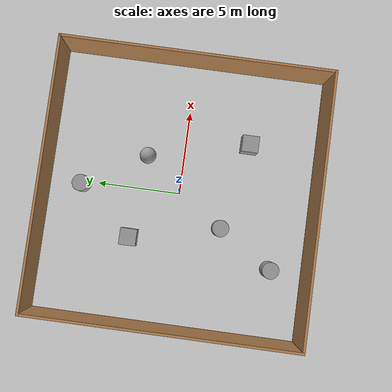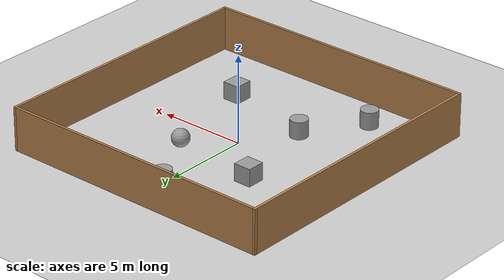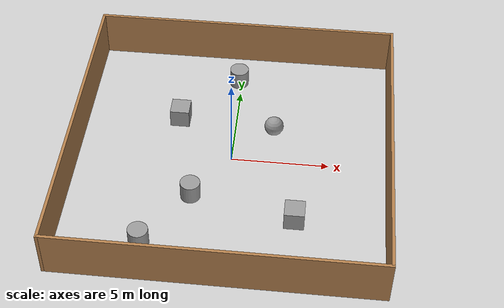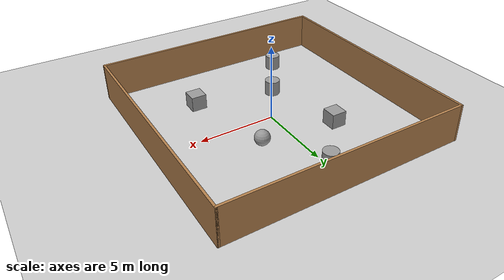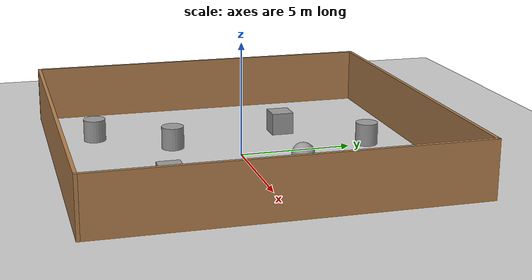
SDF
<sdf version="1.4">
 <world name="default">
  <light name="sun" type="directional">
   <pose>0 0 10 0 -0 0</pose>
   <diffuse>0.8 0.8 0.8 1</diffuse>
   <specular>0.2 0.2 0.2 1</specular>
   <attenuation>
    <range>1000</range>
    <constant>0.9</constant>
    <linear>0.01</linear>
    <quadratic>0.001</quadratic>
   </attenuation>
   <direction>-0.5 0.1 -0.9</direction>
  </light>
  <model name="ground_plane">
   <static>1</static>
   <link name="link">
    <collision name="collision">
     <geometry><plane><normal>0 0 1</normal><size>100 100</size></plane></geometry>
     <surface><friction><ode><mu>100</mu><mu2>50</mu2></ode></friction></surface>
    </collision>
    <visual name="visual">
     <cast_shadows>0</cast_shadows>
     <geometry><plane><normal>0 0 1</normal><size>100 100</size></plane></geometry>
     <material>
      <script><uri>file://media/materials/scripts/gazebo.material</uri><name>Gazebo/Grey</name></script>
     </material>
    </visual>
   </link>
  </model>
  <gravity>0 0 -9.8</gravity>
  <magnetic_field>6e-06 2.3e-05 -4.2e-05</magnetic_field>
  <atmosphere type="adiabatic"/>
  <physics name="default_physics" default="0" type="ode">
   <max_step_size>0.001</max_step_size>
   <real_time_factor>1</real_time_factor>
   <real_time_update_rate>1000</real_time_update_rate>
  </physics>
  <scene><ambient>0.4 0.4 0.4 1</ambient><background>0.7 0.7 0.7 1</background><shadows>1</shadows></scene>
  <spherical_coordinates>
   <surface_model>EARTH_WGS84</surface_model>
   <latitude_deg>0</latitude_deg>
   <longitude_deg>0</longitude_deg>
   <elevation>0</elevation>
   <heading_deg>0</heading_deg>
  </spherical_coordinates>
  <model name="square">
   <link name="Wall_0">
    <collision name="Wall_0_Collision">
     <geometry><box><size>16.1502 0.15 2.5</size></box></geometry>
     <pose>0 0 1.25 0 -0 0</pose>
    </collision>
    <visual name="Wall_0_Visual">
     <pose>0 0 1.25 0 -0 0</pose>
     <geometry><box><size>16.1502 0.15 2.5</size></box></geometry>
     <material>
      <script><uri>file://media/materials/scripts/gazebo.material</uri><name>Gazebo/Wood</name></script>
      <ambient>1 1 1 1</ambient>
     </material>
    </visual>
    <pose>-8 0 0 0 0 -1.5708</pose>
   </link>
   <link name="Wall_5">
    <collision name="Wall_5_Collision">
     <geometry><box><size>16.15 0.15 2.5</size></box></geometry>
     <pose>0 0 1.25 0 -0 0</pose>
    </collision>
    <visual name="Wall_5_Visual">
     <pose>0 0 1.25 0 -0 0</pose>
     <geometry><box><size>16.15 0.15 2.5</size></box></geometry>
     <material>
      <script><uri>file://media/materials/scripts/gazebo.material</uri><name>Gazebo/Wood</name></script>
      <ambient>1 1 1 1</ambient>
     </material>
    </visual>
    <pose>0 8 0 0 -0 0</pose>
   </link>
   <link name="Wall_6">
    <collision name="Wall_6_Collision">
     <geometry><box><size>16.15 0.15 2.5</size></box></geometry>
     <pose>0 0 1.25 0 -0 0</pose>
    </collision>
    <visual name="Wall_6_Visual">
     <pose>0 0 1.25 0 -0 0</pose>
     <geometry><box><size>16.15 0.15 2.5</size></box></geometry>
     <material>
      <script><uri>file://media/materials/scripts/gazebo.material</uri><name>Gazebo/Wood</name></script>
      <ambient>1 1 1 1</ambient>
     </material>
    </visual>
    <pose>8 0 0 0 0 -1.5708</pose>
   </link>
   <link name="Wall_7">
    <collision name="Wall_7_Collision">
     <geometry><box><size>16.15 0.15 2.5</size></box></geometry>
     <pose>0 0 1.25 0 -0 0</pose>
    </collision>
    <visual name="Wall_7_Visual">
     <pose>0 0 1.25 0 -0 0</pose>
     <geometry><box><size>16.15 0.15 2.5</size></box></geometry>
     <material>
      <script><uri>file://media/materials/scripts/gazebo.material</uri><name>Gazebo/Wood</name></script>
      <ambient>1 1 1 1</ambient>
     </material>
    </visual>
    <pose>0 -8 0 0 -0 3.14159</pose>
   </link>
   <static>1</static>
  </model>
  <model name="unit_box">
   <pose>-2.99004 2.66995 0.499995 0 1e-05 0</pose>
   <link name="link">
    <inertial>
     <mass>1</mass>
     <inertia>
      <ixx>0.166667</ixx>
      <ixy>0</ixy>
      <ixz>0</ixz>
      <iyy>0.166667</iyy>
      <iyz>0</iyz>
      <izz>0.166667</izz>
     </inertia>
    </inertial>
    <collision name="collision"><geometry><box><size>1 1 1</size></box></geometry></collision>
    <visual name="visual">
     <geometry><box><size>1 1 1</size></box></geometry>
     <material>
      <script><name>Gazebo/Grey</name><uri>file://media/materials/scripts/gazebo.material</uri></script>
     </material>
    </visual>
   </link>
  </model>
  <model name="unit_cylinder">
   <pose>-1.77385 -2.69832 0.499993 -3e-06 -3e-06 0</pose>
   <link name="link">
    <inertial>
     <mass>1</mass>
     <inertia><ixx>0.145833</ixx><ixy>0</ixy><ixz>0</ixz><iyy>0.145833</iyy><iyz>0</iyz><izz>0.125</izz></inertia>
    </inertial>
    <collision name="collision">
     <geometry><cylinder><radius>0.5</radius><length>1</length></cylinder></geometry>
    </collision>
    <visual name="visual">
     <geometry><cylinder><radius>0.5</radius><length>1</length></cylinder></geometry>
     <material>
      <script><name>Gazebo/Grey</name><uri>file://media/materials/scripts/gazebo.material</uri></script>
     </material>
    </visual>
   </link>
  </model>
  <model name="unit_sphere">
   <pose>2.02452 2.18809 0.5 0 -0 0</pose>
   <link name="link">
    <inertial>
     <mass>1</mass>
     <inertia><ixx>0.1</ixx><ixy>0</ixy><ixz>0</ixz><iyy>0.1</iyy><iyz>0</iyz><izz>0.1</izz></inertia>
    </inertial>
    <collision name="collision"><geometry><sphere><radius>0.5</radius></sphere></geometry></collision>
    <visual name="visual">
     <geometry><sphere><radius>0.5</radius></sphere></geometry>
     <material>
      <script><name>Gazebo/Grey</name><uri>file://media/materials/scripts/gazebo.material</uri></script>
     </material>
    </visual>
   </link>
  </model>
  <model name="unit_box_0">
   <pose>3.46997 -3.82828 0.499995 -1e-05 -0 -0</pose>
   <link name="link">
    <inertial>
     <mass>1</mass>
     <inertia>
      <ixx>0.166667</ixx>
      <ixy>0</ixy>
      <ixz>0</ixz>
      <iyy>0.166667</iyy>
      <iyz>0</iyz>
      <izz>0.166667</izz>
     </inertia>
    </inertial>
    <collision name="collision"><geometry><box><size>1 1 1</size></box></geometry></collision>
    <visual name="visual">
     <geometry><box><size>1 1 1</size></box></geometry>
     <material>
      <script><name>Gazebo/Grey</name><uri>file://media/materials/scripts/gazebo.material</uri></script>
     </material>
    </visual>
   </link>
  </model>
  <model name="unit_cylinder_0">
   <pose>-0.18085 5.91612 0.499993 -3e-06 -4e-06 -0</pose>
   <link name="link">
    <inertial>
     <mass>1</mass>
     <inertia><ixx>0.145833</ixx><ixy>0</ixy><ixz>0</ixz><iyy>0.145833</iyy><iyz>0</iyz><izz>0.125</izz></inertia>
    </inertial>
    <collision name="collision">
     <geometry><cylinder><radius>0.5</radius><length>1</length></cylinder></geometry>
    </collision>
    <visual name="visual">
     <geometry><cylinder><radius>0.5</radius><length>1</length></cylinder></geometry>
     <material>
      <script><name>Gazebo/Grey</name><uri>file://media/materials/scripts/gazebo.material</uri></script>
     </material>
    </visual>
   </link>
  </model>
  <model name="unit_cylinder_1">
   <pose>-3.83756 -5.92608 0.499997 3e-06 4e-06 -0</pose>
   <link name="link">
    <inertial>
     <mass>1</mass>
     <inertia><ixx>0.145833</ixx><ixy>0</ixy><ixz>0</ixz><iyy>0.145833</iyy><iyz>0</iyz><izz>0.125</izz></inertia>
    </inertial>
    <collision name="collision">
     <geometry><cylinder><radius>0.5</radius><length>1</length></cylinder></geometry>
    </collision>
    <visual name="visual">
     <geometry><cylinder><radius>0.5</radius><length>1</length></cylinder></geometry>
     <material>
      <script><name>Gazebo/Grey</name><uri>file://media/materials/scripts/gazebo.material</uri></script>
     </material>
    </visual>
   </link>
  </model>
 </world>
</sdf>
